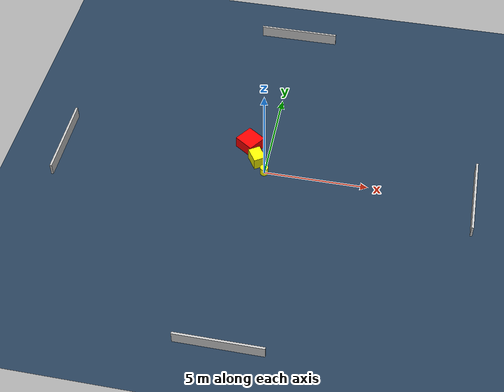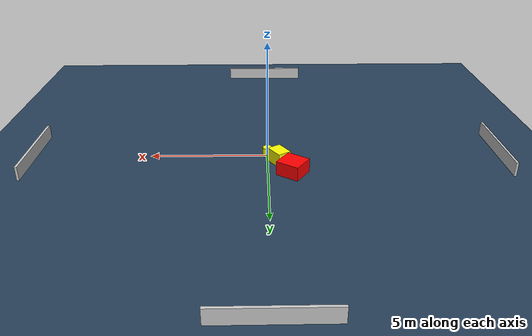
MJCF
<?xml version="1.0" ?>
<mujoco model="generated_environment">
  <option timestep="0.01" integrator="RK4" cone="elliptic"/>
  <default>
    <geom density="1"/>
  </default>
  <asset>
    <texture builtin="gradient" height="3072" name="skybox" rgb1="0.3 0.5 0.7" rgb2="0 0 0" type="skybox" width="512"/>
    <texture builtin="checker" height="300" name="groundplane" rgb1="0.2 0.3 0.4" rgb2="0.1 0.2 0.3" type="2d" width="300"/>
    <material name="groundplane" reflectance="0.2" texrepeat="5 5" texture="groundplane"/>
  </asset>
  <worldbody>
    <light dir="0 0 -1" directional="true" pos="0 0 1.5"/>
    <geom condim="3" friction="0.5 0.005 0.001" material="groundplane" name="floor" pos="0 0 0" size="0 0 0.05" type="plane"/>
    <body name="walls">
      <geom name="wall_1" condim="4" pos="-10.0 0.0 0.3" rgba="0.800000011920929 0.800000011920929 0.800000011920929 1.0" size="0.05 2.0 0.3" type="box"/>
      <geom name="wall_2" condim="4" pos="10.0 0.0 0.3" rgba="0.800000011920929 0.800000011920929 0.800000011920929 1.0" size="0.05 2.0 0.3" type="box"/>
      <geom name="wall_3" condim="4" pos="0.0 -10.0 0.3" rgba="0.800000011920929 0.800000011920929 0.800000011920929 1.0" size="2.0 0.05 0.3" type="box"/>
      <geom name="wall_4" condim="4" pos="0.0 10.0 0.3" rgba="0.800000011920929 0.800000011920929 0.800000011920929 1.0" size="2.0 0.05 0.3" type="box"/>
    </body>
    <body name="robot">
      <joint name="joint_x" type="slide" pos="0 0 0" axis="1 0 0"/>
      <joint name="joint_y" type="slide" pos="0 0 0" axis="0 1 0"/>
      <geom name="robot" type="cylinder" pos="0.0 0.0 0.2" size="0.2 0.2 0.0" mass="5.0" friction="1.0 0.005 0.0001" condim="4" rgba="1.0 1.0 0.0 1.0"/>
    </body>
    <body name="obstacle_1_movable">
      <geom name="obstacle_1_movable" condim="4" pos="-0.48107365401482094 0.6444174049715571 0.3" euler="0 0 123.06401550207636" friction="0.0 0.005 0.001" rgba="1.0 1.0 0.0 1.0" size="0.3980170783033376 0.29574885538224716 0.3" type="box" mass="0.1"/>
      <joint type="free"/>
    </body>
    <body name="obstacle_2_static">
      <geom name="obstacle_2_static" condim="4" pos="-1.0024784849757586 1.5962832451016116 0.3" euler="0 0 235.6211085219567" friction="0.0 0.005 0.001" rgba="1.0 0.0 0.0 1.0" size="0.4765489576955312 0.5048082467075686 0.3" type="box"/>
    </body>
  </worldbody>
  <actuator>
    <motor name="actuator_x" joint="joint_x" gear="1" ctrlrange="-1 1"/>
    <motor name="actuator_y" joint="joint_y" gear="1" ctrlrange="-1 1"/>
  </actuator>
</mujoco>
